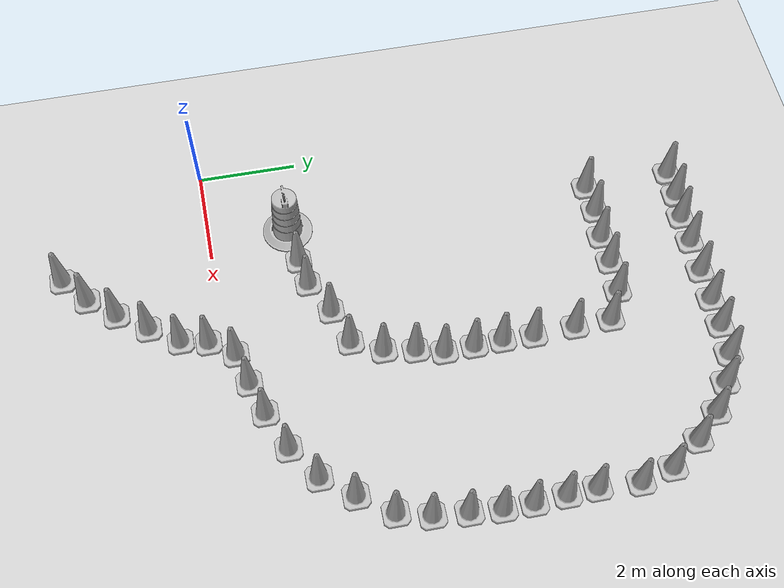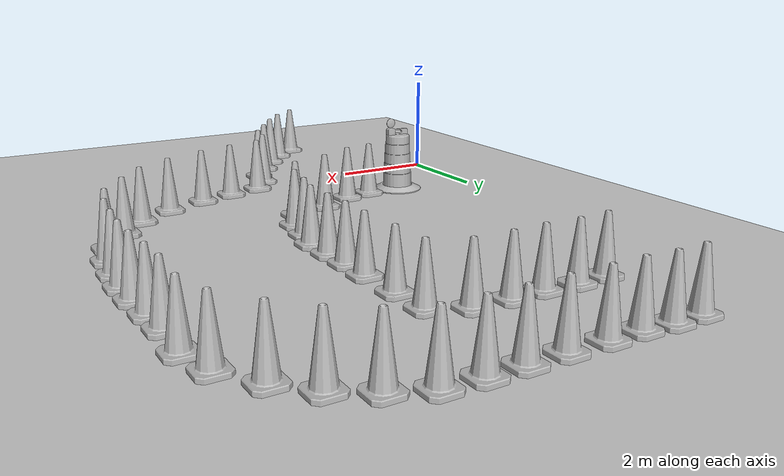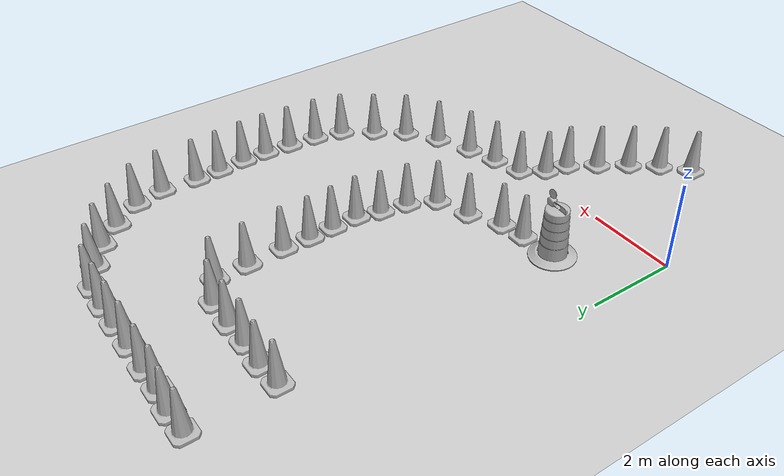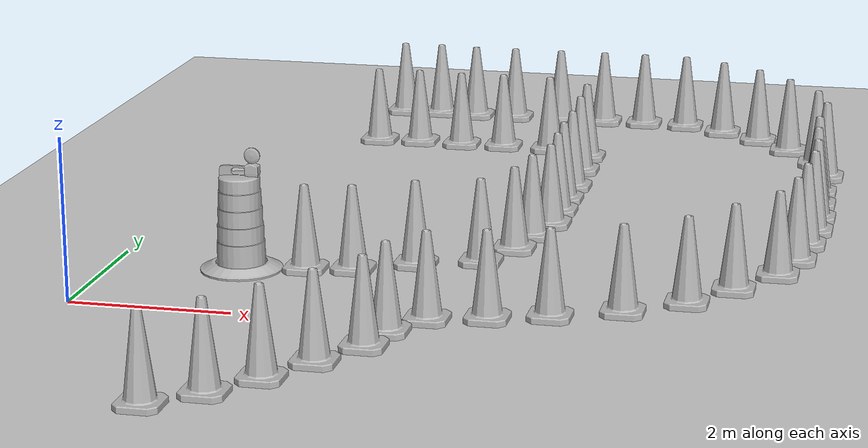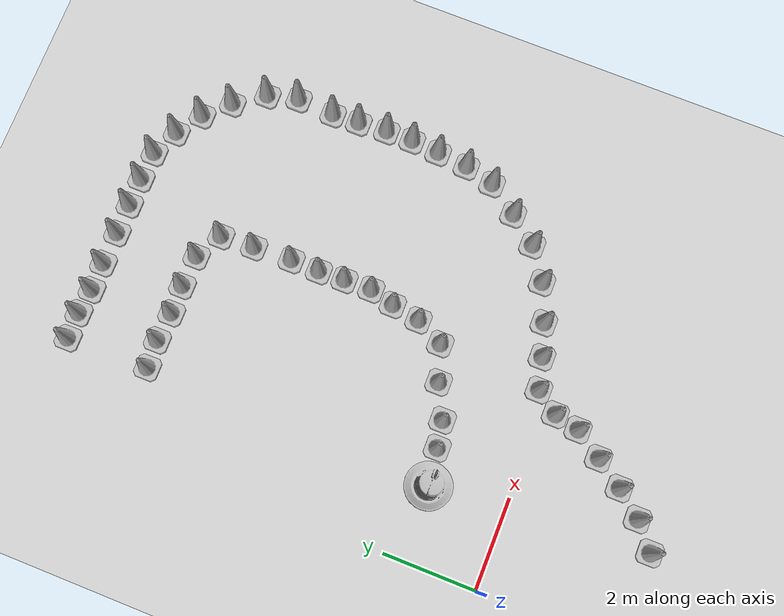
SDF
<sdf version="1.7">
 <world name="default">
  <model name="ground_plane">
   <static>1</static>
   <link name="link">
    <collision name="collision">
     <geometry><plane><normal>0 0 1</normal><size>100 100</size></plane></geometry>
     <surface><friction><ode><mu>100</mu><mu2>50</mu2></ode></friction></surface>
    </collision>
    <visual name="visual">
     <cast_shadows>0</cast_shadows>
     <geometry><plane><normal>0 0 1</normal><size>100 100</size></plane></geometry>
     <material>
      <script><uri>file://media/materials/scripts/gazebo.material</uri><name>Gazebo/Grey</name></script>
     </material>
    </visual>
   </link>
  </model>
  <model name="Construction Barrel_0">
   <link name="link">
    <inertial>
     <pose>0 0 0.4 0 -0 0</pose>
     <mass>500</mass>
     <inertia><ixx>51.2096</ixx><iyy>51.2096</iyy><izz>25</izz><ixy>0</ixy><ixz>0</ixz><iyz>0</iyz></inertia>
    </inertial>
    <collision name="collision">
     <geometry><mesh><uri>model://construction_barrel/meshes/construction_barrel.dae</uri></mesh></geometry>
    </collision>
    <visual name="visual">
     <geometry><mesh><uri>model://construction_barrel/meshes/construction_barrel.dae</uri></mesh></geometry>
    </visual>
   </link>
   <pose>1.61149 1.63462 -2e-06 7e-06 -4e-06 -0.000182</pose>
  </model>
  <model name="Construction Cone_5">
   <link name="link">
    <collision name="collision">
     <geometry>
      <mesh><scale>10 10 10</scale><uri>model://construction_cone/meshes/construction_cone.dae</uri></mesh>
     </geometry>
    </collision>
    <visual name="visual">
     <geometry>
      <mesh><scale>10 10 10</scale><uri>model://construction_cone/meshes/construction_cone.dae</uri></mesh>
     </geometry>
    </visual>
    <inertial>
     <inertia><ixx>1</ixx><ixy>0</ixy><ixz>0</ixz><iyy>1</iyy><iyz>0</iyz><izz>1</izz></inertia>
     <mass>1</mass>
    </inertial>
   </link>
   <pose>2 -3 -0 0 -0 0</pose>
  </model>
  <model name="Construction Cone_6">
   <link name="link">
    <collision name="collision">
     <geometry>
      <mesh><scale>10 10 10</scale><uri>model://construction_cone/meshes/construction_cone.dae</uri></mesh>
     </geometry>
    </collision>
    <visual name="visual">
     <geometry>
      <mesh><scale>10 10 10</scale><uri>model://construction_cone/meshes/construction_cone.dae</uri></mesh>
     </geometry>
    </visual>
    <inertial>
     <inertia><ixx>1</ixx><ixy>0</ixy><ixz>0</ixz><iyy>1</iyy><iyz>0</iyz><izz>1</izz></inertia>
     <mass>1</mass>
    </inertial>
   </link>
   <pose>3 -2 -0 0 -0 0</pose>
  </model>
  <model name="Construction Cone_7">
   <link name="link">
    <collision name="collision">
     <geometry>
      <mesh><scale>10 10 10</scale><uri>model://construction_cone/meshes/construction_cone.dae</uri></mesh>
     </geometry>
    </collision>
    <visual name="visual">
     <geometry>
      <mesh><scale>10 10 10</scale><uri>model://construction_cone/meshes/construction_cone.dae</uri></mesh>
     </geometry>
    </visual>
    <inertial>
     <inertia><ixx>1</ixx><ixy>0</ixy><ixz>0</ixz><iyy>1</iyy><iyz>0</iyz><izz>1</izz></inertia>
     <mass>1</mass>
    </inertial>
   </link>
   <pose>3.81489 -0.815615 -6e-06 -4e-06 1e-06 0</pose>
  </model>
  <model name="Construction Cone_9">
   <link name="link">
    <collision name="collision">
     <geometry>
      <mesh><scale>10 10 10</scale><uri>model://construction_cone/meshes/construction_cone.dae</uri></mesh>
     </geometry>
    </collision>
    <visual name="visual">
     <geometry>
      <mesh><scale>10 10 10</scale><uri>model://construction_cone/meshes/construction_cone.dae</uri></mesh>
     </geometry>
    </visual>
    <inertial>
     <inertia><ixx>1</ixx><ixy>0</ixy><ixz>0</ixz><iyy>1</iyy><iyz>0</iyz><izz>1</izz></inertia>
     <mass>1</mass>
    </inertial>
   </link>
   <pose>4.29194 0.215008 -0 0 0 -0.002892</pose>
  </model>
  <model name="Construction Cone_12">
   <link name="link">
    <collision name="collision">
     <geometry>
      <mesh><scale>10 10 10</scale><uri>model://construction_cone/meshes/construction_cone.dae</uri></mesh>
     </geometry>
    </collision>
    <visual name="visual">
     <geometry>
      <mesh><scale>10 10 10</scale><uri>model://construction_cone/meshes/construction_cone.dae</uri></mesh>
     </geometry>
    </visual>
    <inertial>
     <inertia><ixx>1</ixx><ixy>0</ixy><ixz>0</ixz><iyy>1</iyy><iyz>0</iyz><izz>1</izz></inertia>
     <mass>1</mass>
    </inertial>
   </link>
   <pose>2.97197 1.84589 -0 0 -0 0</pose>
  </model>
  <model name="Construction Cone_13">
   <link name="link">
    <collision name="collision">
     <geometry>
      <mesh><scale>10 10 10</scale><uri>model://construction_cone/meshes/construction_cone.dae</uri></mesh>
     </geometry>
    </collision>
    <visual name="visual">
     <geometry>
      <mesh><scale>10 10 10</scale><uri>model://construction_cone/meshes/construction_cone.dae</uri></mesh>
     </geometry>
    </visual>
    <inertial>
     <inertia><ixx>1</ixx><ixy>0</ixy><ixz>0</ixz><iyy>1</iyy><iyz>0</iyz><izz>1</izz></inertia>
     <mass>1</mass>
    </inertial>
   </link>
   <pose>4.44368 2.45442 -0 0 -0 0</pose>
  </model>
  <model name="Construction Cone_15">
   <link name="link">
    <collision name="collision">
     <geometry>
      <mesh><scale>10 10 10</scale><uri>model://construction_cone/meshes/construction_cone.dae</uri></mesh>
     </geometry>
    </collision>
    <visual name="visual">
     <geometry>
      <mesh><scale>10 10 10</scale><uri>model://construction_cone/meshes/construction_cone.dae</uri></mesh>
     </geometry>
    </visual>
    <inertial>
     <inertia><ixx>1</ixx><ixy>0</ixy><ixz>0</ixz><iyy>1</iyy><iyz>0</iyz><izz>1</izz></inertia>
     <mass>1</mass>
    </inertial>
   </link>
   <pose>5.65745 0.599068 -0 0 -0 0</pose>
  </model>
  <model name="Construction Cone_16">
   <link name="link">
    <collision name="collision">
     <geometry>
      <mesh><scale>10 10 10</scale><uri>model://construction_cone/meshes/construction_cone.dae</uri></mesh>
     </geometry>
    </collision>
    <visual name="visual">
     <geometry>
      <mesh><scale>10 10 10</scale><uri>model://construction_cone/meshes/construction_cone.dae</uri></mesh>
     </geometry>
    </visual>
    <inertial>
     <inertia><ixx>1</ixx><ixy>0</ixy><ixz>0</ixz><iyy>1</iyy><iyz>0</iyz><izz>1</izz></inertia>
     <mass>1</mass>
    </inertial>
   </link>
   <pose>7.14122 1.3951 -5e-06 -4e-06 1e-06 0</pose>
  </model>
  <model name="Construction Cone_17">
   <link name="link">
    <collision name="collision">
     <geometry>
      <mesh><scale>10 10 10</scale><uri>model://construction_cone/meshes/construction_cone.dae</uri></mesh>
     </geometry>
    </collision>
    <visual name="visual">
     <geometry>
      <mesh><scale>10 10 10</scale><uri>model://construction_cone/meshes/construction_cone.dae</uri></mesh>
     </geometry>
    </visual>
    <inertial>
     <inertia><ixx>1</ixx><ixy>0</ixy><ixz>0</ixz><iyy>1</iyy><iyz>0</iyz><izz>1</izz></inertia>
     <mass>1</mass>
    </inertial>
   </link>
   <pose>8.09101 2.65771 -0 0 -0 0</pose>
  </model>
  <model name="Construction Cone_19">
   <link name="link">
    <collision name="collision">
     <geometry>
      <mesh><scale>10 10 10</scale><uri>model://construction_cone/meshes/construction_cone.dae</uri></mesh>
     </geometry>
    </collision>
    <visual name="visual">
     <geometry>
      <mesh><scale>10 10 10</scale><uri>model://construction_cone/meshes/construction_cone.dae</uri></mesh>
     </geometry>
    </visual>
    <inertial>
     <inertia><ixx>1</ixx><ixy>0</ixy><ixz>0</ixz><iyy>1</iyy><iyz>0</iyz><izz>1</izz></inertia>
     <mass>1</mass>
    </inertial>
   </link>
   <pose>8.32125 3.97918 -8e-06 -5e-06 -0 -0</pose>
  </model>
  <model name="Construction Cone_14">
   <link name="link">
    <collision name="collision">
     <geometry>
      <mesh><scale>10 10 10</scale><uri>model://construction_cone/meshes/construction_cone.dae</uri></mesh>
     </geometry>
    </collision>
    <visual name="visual">
     <geometry>
      <mesh><scale>10 10 10</scale><uri>model://construction_cone/meshes/construction_cone.dae</uri></mesh>
     </geometry>
    </visual>
    <inertial>
     <inertia><ixx>1</ixx><ixy>0</ixy><ixz>0</ixz><iyy>1</iyy><iyz>0</iyz><izz>1</izz></inertia>
     <mass>1</mass>
    </inertial>
   </link>
   <pose>4.85446 3.67774 -2e-06 -3e-06 -1e-06 -0</pose>
  </model>
  <model name="Construction Cone_11">
   <link name="link">
    <collision name="collision">
     <geometry>
      <mesh><scale>10 10 10</scale><uri>model://construction_cone/meshes/construction_cone.dae</uri></mesh>
     </geometry>
    </collision>
    <visual name="visual">
     <geometry>
      <mesh><scale>10 10 10</scale><uri>model://construction_cone/meshes/construction_cone.dae</uri></mesh>
     </geometry>
    </visual>
    <inertial>
     <inertia><ixx>1</ixx><ixy>0</ixy><ixz>0</ixz><iyy>1</iyy><iyz>0</iyz><izz>1</izz></inertia>
     <mass>1</mass>
    </inertial>
   </link>
   <pose>2.54701 -2.54691 -0 0 -0 0</pose>
  </model>
  <model name="Construction Cone_18">
   <link name="link">
    <collision name="collision">
     <geometry>
      <mesh><scale>10 10 10</scale><uri>model://construction_cone/meshes/construction_cone.dae</uri></mesh>
     </geometry>
    </collision>
    <visual name="visual">
     <geometry>
      <mesh><scale>10 10 10</scale><uri>model://construction_cone/meshes/construction_cone.dae</uri></mesh>
     </geometry>
    </visual>
    <inertial>
     <inertia><ixx>1</ixx><ixy>0</ixy><ixz>0</ixz><iyy>1</iyy><iyz>0</iyz><izz>1</izz></inertia>
     <mass>1</mass>
    </inertial>
   </link>
   <pose>3.41673 -1.40396 -0 0 -0 0</pose>
  </model>
  <model name="Construction Cone_22">
   <link name="link">
    <collision name="collision">
     <geometry>
      <mesh><scale>10 10 10</scale><uri>model://construction_cone/meshes/construction_cone.dae</uri></mesh>
     </geometry>
    </collision>
    <visual name="visual">
     <geometry>
      <mesh><scale>10 10 10</scale><uri>model://construction_cone/meshes/construction_cone.dae</uri></mesh>
     </geometry>
    </visual>
    <inertial>
     <inertia><ixx>1</ixx><ixy>0</ixy><ixz>0</ixz><iyy>1</iyy><iyz>0</iyz><izz>1</izz></inertia>
     <mass>1</mass>
    </inertial>
   </link>
   <pose>3.93882 -0.275644 -0 0 -0 0.000485</pose>
  </model>
  <model name="Construction Cone_23">
   <link name="link">
    <collision name="collision">
     <geometry>
      <mesh><scale>10 10 10</scale><uri>model://construction_cone/meshes/construction_cone.dae</uri></mesh>
     </geometry>
    </collision>
    <visual name="visual">
     <geometry>
      <mesh><scale>10 10 10</scale><uri>model://construction_cone/meshes/construction_cone.dae</uri></mesh>
     </geometry>
    </visual>
    <inertial>
     <inertia><ixx>1</ixx><ixy>0</ixy><ixz>0</ixz><iyy>1</iyy><iyz>0</iyz><izz>1</izz></inertia>
     <mass>1</mass>
    </inertial>
   </link>
   <pose>4.96265 0.387667 -0 0 -0 0</pose>
  </model>
  <model name="Construction Cone_24">
   <link name="link">
    <collision name="collision">
     <geometry>
      <mesh><scale>10 10 10</scale><uri>model://construction_cone/meshes/construction_cone.dae</uri></mesh>
     </geometry>
    </collision>
    <visual name="visual">
     <geometry>
      <mesh><scale>10 10 10</scale><uri>model://construction_cone/meshes/construction_cone.dae</uri></mesh>
     </geometry>
    </visual>
    <inertial>
     <inertia><ixx>1</ixx><ixy>0</ixy><ixz>0</ixz><iyy>1</iyy><iyz>0</iyz><izz>1</izz></inertia>
     <mass>1</mass>
    </inertial>
   </link>
   <pose>3.67747 2.19987 -1e-05 -1e-06 0 0</pose>
  </model>
  <model name="Construction Cone_25">
   <link name="link">
    <collision name="collision">
     <geometry>
      <mesh><scale>10 10 10</scale><uri>model://construction_cone/meshes/construction_cone.dae</uri></mesh>
     </geometry>
    </collision>
    <visual name="visual">
     <geometry>
      <mesh><scale>10 10 10</scale><uri>model://construction_cone/meshes/construction_cone.dae</uri></mesh>
     </geometry>
    </visual>
    <inertial>
     <inertia><ixx>1</ixx><ixy>0</ixy><ixz>0</ixz><iyy>1</iyy><iyz>0</iyz><izz>1</izz></inertia>
     <mass>1</mass>
    </inertial>
   </link>
   <pose>6.45449 0.928592 -1e-05 -1e-06 0 0</pose>
  </model>
  <model name="Construction Cone_26">
   <link name="link">
    <collision name="collision">
     <geometry>
      <mesh><scale>10 10 10</scale><uri>model://construction_cone/meshes/construction_cone.dae</uri></mesh>
     </geometry>
    </collision>
    <visual name="visual">
     <geometry>
      <mesh><scale>10 10 10</scale><uri>model://construction_cone/meshes/construction_cone.dae</uri></mesh>
     </geometry>
    </visual>
    <inertial>
     <inertia><ixx>1</ixx><ixy>0</ixy><ixz>0</ixz><iyy>1</iyy><iyz>0</iyz><izz>1</izz></inertia>
     <mass>1</mass>
    </inertial>
   </link>
   <pose>7.62493 2.00459 -4e-06 4e-06 -1e-06 0</pose>
  </model>
  <model name="Construction Cone_27">
   <link name="link">
    <collision name="collision">
     <geometry>
      <mesh><scale>10 10 10</scale><uri>model://construction_cone/meshes/construction_cone.dae</uri></mesh>
     </geometry>
    </collision>
    <visual name="visual">
     <geometry>
      <mesh><scale>10 10 10</scale><uri>model://construction_cone/meshes/construction_cone.dae</uri></mesh>
     </geometry>
    </visual>
    <inertial>
     <inertia><ixx>1</ixx><ixy>0</ixy><ixz>0</ixz><iyy>1</iyy><iyz>0</iyz><izz>1</izz></inertia>
     <mass>1</mass>
    </inertial>
   </link>
   <pose>4.74587 3.05843 -5e-06 -4e-06 1e-06 0</pose>
  </model>
  <model name="Construction Cone_28">
   <link name="link">
    <collision name="collision">
     <geometry>
      <mesh><scale>10 10 10</scale><uri>model://construction_cone/meshes/construction_cone.dae</uri></mesh>
     </geometry>
    </collision>
    <visual name="visual">
     <geometry>
      <mesh><scale>10 10 10</scale><uri>model://construction_cone/meshes/construction_cone.dae</uri></mesh>
     </geometry>
    </visual>
    <inertial>
     <inertia><ixx>1</ixx><ixy>0</ixy><ixz>0</ixz><iyy>1</iyy><iyz>0</iyz><izz>1</izz></inertia>
     <mass>1</mass>
    </inertial>
   </link>
   <pose>8.255 3.30316 0 -0 -0 -0</pose>
  </model>
  <model name="Construction Cone_29">
   <link name="link">
    <collision name="collision">
     <geometry>
      <mesh><scale>10 10 10</scale><uri>model://construction_cone/meshes/construction_cone.dae</uri></mesh>
     </geometry>
    </collision>
    <visual name="visual">
     <geometry>
      <mesh><scale>10 10 10</scale><uri>model://construction_cone/meshes/construction_cone.dae</uri></mesh>
     </geometry>
    </visual>
    <inertial>
     <inertia><ixx>1</ixx><ixy>0</ixy><ixz>0</ixz><iyy>1</iyy><iyz>0</iyz><izz>1</izz></inertia>
     <mass>1</mass>
    </inertial>
   </link>
   <pose>4.99353 4.2176 -0 0 -0 0</pose>
  </model>
  <model name="Construction Cone_30">
   <link name="link">
    <collision name="collision">
     <geometry>
      <mesh><scale>10 10 10</scale><uri>model://construction_cone/meshes/construction_cone.dae</uri></mesh>
     </geometry>
    </collision>
    <visual name="visual">
     <geometry>
      <mesh><scale>10 10 10</scale><uri>model://construction_cone/meshes/construction_cone.dae</uri></mesh>
     </geometry>
    </visual>
    <inertial>
     <inertia><ixx>1</ixx><ixy>0</ixy><ixz>0</ixz><iyy>1</iyy><iyz>0</iyz><izz>1</izz></inertia>
     <mass>1</mass>
    </inertial>
   </link>
   <pose>8.36914 4.59521 -6e-06 -4e-06 0 0</pose>
  </model>
  <model name="Construction Cone_33">
   <link name="link">
    <collision name="collision">
     <geometry>
      <mesh><scale>10 10 10</scale><uri>model://construction_cone/meshes/construction_cone.dae</uri></mesh>
     </geometry>
    </collision>
    <visual name="visual">
     <geometry>
      <mesh><scale>10 10 10</scale><uri>model://construction_cone/meshes/construction_cone.dae</uri></mesh>
     </geometry>
    </visual>
    <inertial>
     <inertia><ixx>1</ixx><ixy>0</ixy><ixz>0</ixz><iyy>1</iyy><iyz>0</iyz><izz>1</izz></inertia>
     <mass>1</mass>
    </inertial>
   </link>
   <pose>8.29612 6.40467 -3e-06 -3e-06 -1e-06 -0</pose>
  </model>
  <model name="Construction Cone_34">
   <link name="link">
    <collision name="collision">
     <geometry>
      <mesh><scale>10 10 10</scale><uri>model://construction_cone/meshes/construction_cone.dae</uri></mesh>
     </geometry>
    </collision>
    <visual name="visual">
     <geometry>
      <mesh><scale>10 10 10</scale><uri>model://construction_cone/meshes/construction_cone.dae</uri></mesh>
     </geometry>
    </visual>
    <inertial>
     <inertia><ixx>1</ixx><ixy>0</ixy><ixz>0</ixz><iyy>1</iyy><iyz>0</iyz><izz>1</izz></inertia>
     <mass>1</mass>
    </inertial>
   </link>
   <pose>8.34083 7.21964 -0 0 -0 0</pose>
  </model>
  <model name="Construction Cone_35">
   <link name="link">
    <collision name="collision">
     <geometry>
      <mesh><scale>10 10 10</scale><uri>model://construction_cone/meshes/construction_cone.dae</uri></mesh>
     </geometry>
    </collision>
    <visual name="visual">
     <geometry>
      <mesh><scale>10 10 10</scale><uri>model://construction_cone/meshes/construction_cone.dae</uri></mesh>
     </geometry>
    </visual>
    <inertial>
     <inertia><ixx>1</ixx><ixy>0</ixy><ixz>0</ixz><iyy>1</iyy><iyz>0</iyz><izz>1</izz></inertia>
     <mass>1</mass>
    </inertial>
   </link>
   <pose>8.17095 7.88476 -1e-05 0 -0 0</pose>
  </model>
  <model name="Construction Cone_36">
   <link name="link">
    <collision name="collision">
     <geometry>
      <mesh><scale>10 10 10</scale><uri>model://construction_cone/meshes/construction_cone.dae</uri></mesh>
     </geometry>
    </collision>
    <visual name="visual">
     <geometry>
      <mesh><scale>10 10 10</scale><uri>model://construction_cone/meshes/construction_cone.dae</uri></mesh>
     </geometry>
    </visual>
    <inertial>
     <inertia><ixx>1</ixx><ixy>0</ixy><ixz>0</ixz><iyy>1</iyy><iyz>0</iyz><izz>1</izz></inertia>
     <mass>1</mass>
    </inertial>
   </link>
   <pose>7.71925 8.5192 -9e-06 -1e-06 -0 -0</pose>
  </model>
  <model name="Construction Cone_37">
   <link name="link">
    <collision name="collision">
     <geometry>
      <mesh><scale>10 10 10</scale><uri>model://construction_cone/meshes/construction_cone.dae</uri></mesh>
     </geometry>
    </collision>
    <visual name="visual">
     <geometry>
      <mesh><scale>10 10 10</scale><uri>model://construction_cone/meshes/construction_cone.dae</uri></mesh>
     </geometry>
    </visual>
    <inertial>
     <inertia><ixx>1</ixx><ixy>0</ixy><ixz>0</ixz><iyy>1</iyy><iyz>0</iyz><izz>1</izz></inertia>
     <mass>1</mass>
    </inertial>
   </link>
   <pose>7.23112 9.02484 -5e-06 -4e-06 1e-06 0</pose>
  </model>
  <model name="Construction Cone_38">
   <link name="link">
    <collision name="collision">
     <geometry>
      <mesh><scale>10 10 10</scale><uri>model://construction_cone/meshes/construction_cone.dae</uri></mesh>
     </geometry>
    </collision>
    <visual name="visual">
     <geometry>
      <mesh><scale>10 10 10</scale><uri>model://construction_cone/meshes/construction_cone.dae</uri></mesh>
     </geometry>
    </visual>
    <inertial>
     <inertia><ixx>1</ixx><ixy>0</ixy><ixz>0</ixz><iyy>1</iyy><iyz>0</iyz><izz>1</izz></inertia>
     <mass>1</mass>
    </inertial>
   </link>
   <pose>6.66486 9.39048 0 -0 -0 -0</pose>
  </model>
  <model name="Construction Cone_39">
   <link name="link">
    <collision name="collision">
     <geometry>
      <mesh><scale>10 10 10</scale><uri>model://construction_cone/meshes/construction_cone.dae</uri></mesh>
     </geometry>
    </collision>
    <visual name="visual">
     <geometry>
      <mesh><scale>10 10 10</scale><uri>model://construction_cone/meshes/construction_cone.dae</uri></mesh>
     </geometry>
    </visual>
    <inertial>
     <inertia><ixx>1</ixx><ixy>0</ixy><ixz>0</ixz><iyy>1</iyy><iyz>0</iyz><izz>1</izz></inertia>
     <mass>1</mass>
    </inertial>
   </link>
   <pose>6.06943 9.65349 -6e-06 -4e-06 1e-06 0</pose>
  </model>
  <model name="Construction Cone_40">
   <link name="link">
    <collision name="collision">
     <geometry>
      <mesh><scale>10 10 10</scale><uri>model://construction_cone/meshes/construction_cone.dae</uri></mesh>
     </geometry>
    </collision>
    <visual name="visual">
     <geometry>
      <mesh><scale>10 10 10</scale><uri>model://construction_cone/meshes/construction_cone.dae</uri></mesh>
     </geometry>
    </visual>
    <inertial>
     <inertia><ixx>1</ixx><ixy>0</ixy><ixz>0</ixz><iyy>1</iyy><iyz>0</iyz><izz>1</izz></inertia>
     <mass>1</mass>
    </inertial>
   </link>
   <pose>5.43375 9.6839 -0 0 -0 0</pose>
  </model>
  <model name="Construction Cone_41">
   <link name="link">
    <collision name="collision">
     <geometry>
      <mesh><scale>10 10 10</scale><uri>model://construction_cone/meshes/construction_cone.dae</uri></mesh>
     </geometry>
    </collision>
    <visual name="visual">
     <geometry>
      <mesh><scale>10 10 10</scale><uri>model://construction_cone/meshes/construction_cone.dae</uri></mesh>
     </geometry>
    </visual>
    <inertial>
     <inertia><ixx>1</ixx><ixy>0</ixy><ixz>0</ixz><iyy>1</iyy><iyz>0</iyz><izz>1</izz></inertia>
     <mass>1</mass>
    </inertial>
   </link>
   <pose>4.81533 9.68495 -0 0 -0 0</pose>
  </model>
  <model name="Construction Cone_42">
   <link name="link">
    <collision name="collision">
     <geometry>
      <mesh><scale>10 10 10</scale><uri>model://construction_cone/meshes/construction_cone.dae</uri></mesh>
     </geometry>
    </collision>
    <visual name="visual">
     <geometry>
      <mesh><scale>10 10 10</scale><uri>model://construction_cone/meshes/construction_cone.dae</uri></mesh>
     </geometry>
    </visual>
    <inertial>
     <inertia><ixx>1</ixx><ixy>0</ixy><ixz>0</ixz><iyy>1</iyy><iyz>0</iyz><izz>1</izz></inertia>
     <mass>1</mass>
    </inertial>
   </link>
   <pose>4.14486 9.67975 -0 0 -0 0</pose>
  </model>
  <model name="Construction Cone_43">
   <link name="link">
    <collision name="collision">
     <geometry>
      <mesh><scale>10 10 10</scale><uri>model://construction_cone/meshes/construction_cone.dae</uri></mesh>
     </geometry>
    </collision>
    <visual name="visual">
     <geometry>
      <mesh><scale>10 10 10</scale><uri>model://construction_cone/meshes/construction_cone.dae</uri></mesh>
     </geometry>
    </visual>
    <inertial>
     <inertia><ixx>1</ixx><ixy>0</ixy><ixz>0</ixz><iyy>1</iyy><iyz>0</iyz><izz>1</izz></inertia>
     <mass>1</mass>
    </inertial>
   </link>
   <pose>3.43483 9.68563 -0 0 -0 0</pose>
  </model>
  <model name="Construction Cone_44">
   <link name="link">
    <collision name="collision">
     <geometry>
      <mesh><scale>10 10 10</scale><uri>model://construction_cone/meshes/construction_cone.dae</uri></mesh>
     </geometry>
    </collision>
    <visual name="visual">
     <geometry>
      <mesh><scale>10 10 10</scale><uri>model://construction_cone/meshes/construction_cone.dae</uri></mesh>
     </geometry>
    </visual>
    <inertial>
     <inertia><ixx>1</ixx><ixy>0</ixy><ixz>0</ixz><iyy>1</iyy><iyz>0</iyz><izz>1</izz></inertia>
     <mass>1</mass>
    </inertial>
   </link>
   <pose>4.96532 6.01798 -0 0 -0 0</pose>
  </model>
  <model name="Construction Cone_45">
   <link name="link">
    <collision name="collision">
     <geometry>
      <mesh><scale>10 10 10</scale><uri>model://construction_cone/meshes/construction_cone.dae</uri></mesh>
     </geometry>
    </collision>
    <visual name="visual">
     <geometry>
      <mesh><scale>10 10 10</scale><uri>model://construction_cone/meshes/construction_cone.dae</uri></mesh>
     </geometry>
    </visual>
    <inertial>
     <inertia><ixx>1</ixx><ixy>0</ixy><ixz>0</ixz><iyy>1</iyy><iyz>0</iyz><izz>1</izz></inertia>
     <mass>1</mass>
    </inertial>
   </link>
   <pose>4.93141 6.86126 -2e-06 -3e-06 -1e-06 -0</pose>
  </model>
  <model name="Construction Cone_46">
   <link name="link">
    <collision name="collision">
     <geometry>
      <mesh><scale>10 10 10</scale><uri>model://construction_cone/meshes/construction_cone.dae</uri></mesh>
     </geometry>
    </collision>
    <visual name="visual">
     <geometry>
      <mesh><scale>10 10 10</scale><uri>model://construction_cone/meshes/construction_cone.dae</uri></mesh>
     </geometry>
    </visual>
    <inertial>
     <inertia><ixx>1</ixx><ixy>0</ixy><ixz>0</ixz><iyy>1</iyy><iyz>0</iyz><izz>1</izz></inertia>
     <mass>1</mass>
    </inertial>
   </link>
   <pose>4.89809 7.60169 -5e-06 -4e-06 1e-06 0</pose>
  </model>
  <model name="Construction Cone_47">
   <link name="link">
    <collision name="collision">
     <geometry>
      <mesh><scale>10 10 10</scale><uri>model://construction_cone/meshes/construction_cone.dae</uri></mesh>
     </geometry>
    </collision>
    <visual name="visual">
     <geometry>
      <mesh><scale>10 10 10</scale><uri>model://construction_cone/meshes/construction_cone.dae</uri></mesh>
     </geometry>
    </visual>
    <inertial>
     <inertia><ixx>1</ixx><ixy>0</ixy><ixz>0</ixz><iyy>1</iyy><iyz>0</iyz><izz>1</izz></inertia>
     <mass>1</mass>
    </inertial>
   </link>
   <pose>4.29778 7.91397 -8e-06 -5e-06 -0 -0</pose>
  </model>
  <model name="Construction Cone_48">
   <link name="link">
    <collision name="collision">
     <geometry>
      <mesh><scale>10 10 10</scale><uri>model://construction_cone/meshes/construction_cone.dae</uri></mesh>
     </geometry>
    </collision>
    <visual name="visual">
     <geometry>
      <mesh><scale>10 10 10</scale><uri>model://construction_cone/meshes/construction_cone.dae</uri></mesh>
     </geometry>
    </visual>
    <inertial>
     <inertia><ixx>1</ixx><ixy>0</ixy><ixz>0</ixz><iyy>1</iyy><iyz>0</iyz><izz>1</izz></inertia>
     <mass>1</mass>
    </inertial>
   </link>
   <pose>3.60381 7.94248 -0 0 -0 0</pose>
  </model>
  <model name="Construction Cone_49">
   <link name="link">
    <collision name="collision">
     <geometry>
      <mesh><scale>10 10 10</scale><uri>model://construction_cone/meshes/construction_cone.dae</uri></mesh>
     </geometry>
    </collision>
    <visual name="visual">
     <geometry>
      <mesh><scale>10 10 10</scale><uri>model://construction_cone/meshes/construction_cone.dae</uri></mesh>
     </geometry>
    </visual>
    <inertial>
     <inertia><ixx>1</ixx><ixy>0</ixy><ixz>0</ixz><iyy>1</iyy><iyz>0</iyz><izz>1</izz></inertia>
     <mass>1</mass>
    </inertial>
   </link>
   <pose>2.97949 7.92197 -0 0 -0 0</pose>
  </model>
  <model name="Construction Cone_50">
   <link name="link">
    <collision name="collision">
     <geometry>
      <mesh><scale>10 10 10</scale><uri>model://construction_cone/meshes/construction_cone.dae</uri></mesh>
     </geometry>
    </collision>
    <visual name="visual">
     <geometry>
      <mesh><scale>10 10 10</scale><uri>model://construction_cone/meshes/construction_cone.dae</uri></mesh>
     </geometry>
    </visual>
    <inertial>
     <inertia><ixx>1</ixx><ixy>0</ixy><ixz>0</ixz><iyy>1</iyy><iyz>0</iyz><izz>1</izz></inertia>
     <mass>1</mass>
    </inertial>
   </link>
   <pose>2.82271 9.67876 -4e-06 4e-06 -1e-06 0</pose>
  </model>
  <model name="Construction Cone_51">
   <link name="link">
    <collision name="collision">
     <geometry>
      <mesh><scale>10 10 10</scale><uri>model://construction_cone/meshes/construction_cone.dae</uri></mesh>
     </geometry>
    </collision>
    <visual name="visual">
     <geometry>
      <mesh><scale>10 10 10</scale><uri>model://construction_cone/meshes/construction_cone.dae</uri></mesh>
     </geometry>
    </visual>
    <inertial>
     <inertia><ixx>1</ixx><ixy>0</ixy><ixz>0</ixz><iyy>1</iyy><iyz>0</iyz><izz>1</izz></inertia>
     <mass>1</mass>
    </inertial>
   </link>
   <pose>2.34154 7.97075 -0 0 -0 0</pose>
  </model>
  <model name="Construction Cone_52">
   <link name="link">
    <collision name="collision">
     <geometry>
      <mesh><scale>10 10 10</scale><uri>model://construction_cone/meshes/construction_cone.dae</uri></mesh>
     </geometry>
    </collision>
    <visual name="visual">
     <geometry>
      <mesh><scale>10 10 10</scale><uri>model://construction_cone/meshes/construction_cone.dae</uri></mesh>
     </geometry>
    </visual>
    <inertial>
     <inertia><ixx>1</ixx><ixy>0</ixy><ixz>0</ixz><iyy>1</iyy><iyz>0</iyz><izz>1</izz></inertia>
     <mass>1</mass>
    </inertial>
   </link>
   <pose>2.26655 9.72952 -0 0 -0 0</pose>
  </model>
  <model name="Construction Cone_53">
   <link name="link">
    <collision name="collision">
     <geometry>
      <mesh><scale>10 10 10</scale><uri>model://construction_cone/meshes/construction_cone.dae</uri></mesh>
     </geometry>
    </collision>
    <visual name="visual">
     <geometry>
      <mesh><scale>10 10 10</scale><uri>model://construction_cone/meshes/construction_cone.dae</uri></mesh>
     </geometry>
    </visual>
    <inertial>
     <inertia><ixx>1</ixx><ixy>0</ixy><ixz>0</ixz><iyy>1</iyy><iyz>0</iyz><izz>1</izz></inertia>
     <mass>1</mass>
    </inertial>
   </link>
   <pose>1.73595 7.93056 -0 -0 -0 -0</pose>
  </model>
  <model name="Construction Cone_55">
   <link name="link">
    <collision name="collision">
     <geometry>
      <mesh><scale>10 10 10</scale><uri>model://construction_cone/meshes/construction_cone.dae</uri></mesh>
     </geometry>
    </collision>
    <visual name="visual">
     <geometry>
      <mesh><scale>10 10 10</scale><uri>model://construction_cone/meshes/construction_cone.dae</uri></mesh>
     </geometry>
    </visual>
    <inertial>
     <inertia><ixx>1</ixx><ixy>0</ixy><ixz>0</ixz><iyy>1</iyy><iyz>0</iyz><izz>1</izz></inertia>
     <mass>1</mass>
    </inertial>
   </link>
   <pose>1.69641 9.72068 0 -0 -0 -0</pose>
  </model>
  <model name="Construction Cone_91">
   <link name="link">
    <collision name="collision">
     <geometry>
      <mesh><scale>10 10 10</scale><uri>model://construction_cone/meshes/construction_cone.dae</uri></mesh>
     </geometry>
    </collision>
    <visual name="visual">
     <geometry>
      <mesh><scale>10 10 10</scale><uri>model://construction_cone/meshes/construction_cone.dae</uri></mesh>
     </geometry>
    </visual>
    <inertial>
     <inertia><ixx>1</ixx><ixy>0</ixy><ixz>0</ixz><iyy>1</iyy><iyz>0</iyz><izz>1</izz></inertia>
     <mass>1</mass>
    </inertial>
   </link>
   <pose>2.39725 1.74316 -0 0 -0 0</pose>
  </model>
  <model name="Construction Cone_92">
   <link name="link">
    <collision name="collision">
     <geometry>
      <mesh><scale>10 10 10</scale><uri>model://construction_cone/meshes/construction_cone.dae</uri></mesh>
     </geometry>
    </collision>
    <visual name="visual">
     <geometry>
      <mesh><scale>10 10 10</scale><uri>model://construction_cone/meshes/construction_cone.dae</uri></mesh>
     </geometry>
    </visual>
    <inertial>
     <inertia><ixx>1</ixx><ixy>0</ixy><ixz>0</ixz><iyy>1</iyy><iyz>0</iyz><izz>1</izz></inertia>
     <mass>1</mass>
    </inertial>
   </link>
   <pose>8.36464 5.18252 -2e-06 -3e-06 -1e-06 -0</pose>
  </model>
  <model name="Construction Cone_93">
   <link name="link">
    <collision name="collision">
     <geometry>
      <mesh><scale>10 10 10</scale><uri>model://construction_cone/meshes/construction_cone.dae</uri></mesh>
     </geometry>
    </collision>
    <visual name="visual">
     <geometry>
      <mesh><scale>10 10 10</scale><uri>model://construction_cone/meshes/construction_cone.dae</uri></mesh>
     </geometry>
    </visual>
    <inertial>
     <inertia><ixx>1</ixx><ixy>0</ixy><ixz>0</ixz><iyy>1</iyy><iyz>0</iyz><izz>1</izz></inertia>
     <mass>1</mass>
    </inertial>
   </link>
   <pose>8.32361 5.81693 -1e-05 0 -0 0</pose>
  </model>
  <model name="Construction Cone_95">
   <link name="link">
    <collision name="collision">
     <geometry>
      <mesh><scale>10 10 10</scale><uri>model://construction_cone/meshes/construction_cone.dae</uri></mesh>
     </geometry>
    </collision>
    <visual name="visual">
     <geometry>
      <mesh><scale>10 10 10</scale><uri>model://construction_cone/meshes/construction_cone.dae</uri></mesh>
     </geometry>
    </visual>
    <inertial>
     <inertia><ixx>1</ixx><ixy>0</ixy><ixz>0</ixz><iyy>1</iyy><iyz>0</iyz><izz>1</izz></inertia>
     <mass>1</mass>
    </inertial>
   </link>
   <pose>4.95655 5.3906 -0 0 -0 0</pose>
  </model>
  <model name="Construction Cone_94">
   <link name="link">
    <collision name="collision">
     <geometry>
      <mesh><scale>10 10 10</scale><uri>model://construction_cone/meshes/construction_cone.dae</uri></mesh>
     </geometry>
    </collision>
    <visual name="visual">
     <geometry>
      <mesh><scale>10 10 10</scale><uri>model://construction_cone/meshes/construction_cone.dae</uri></mesh>
     </geometry>
    </visual>
    <inertial>
     <inertia><ixx>1</ixx><ixy>0</ixy><ixz>0</ixz><iyy>1</iyy><iyz>0</iyz><izz>1</izz></inertia>
     <mass>1</mass>
    </inertial>
   </link>
   <pose>4.9777 4.81859 -0 0 -1e-06 0</pose>
  </model>
 </world>
</sdf>
